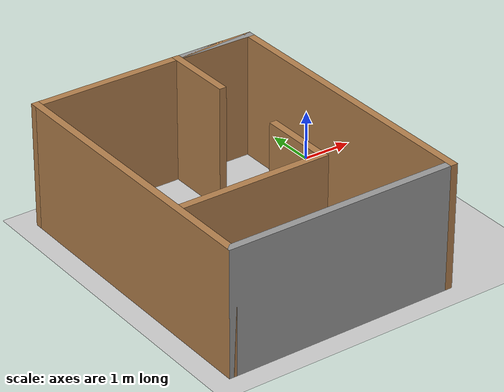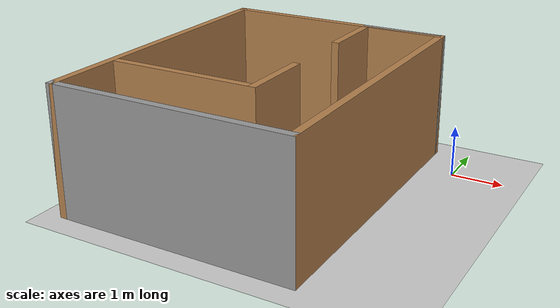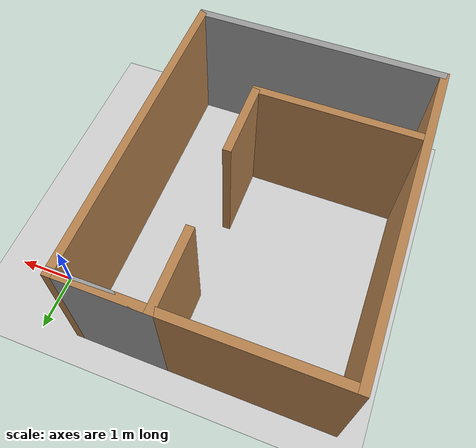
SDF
<sdf version="1.6">
 <world name="default">
  <light name="sun" type="directional">
   <pose>0 0 10 0 -0 0</pose>
   <diffuse>0.8 0.8 0.8 1</diffuse>
   <specular>0.2 0.2 0.2 1</specular>
   <attenuation>
    <range>1000</range>
    <constant>0.9</constant>
    <linear>0.01</linear>
    <quadratic>0.001</quadratic>
   </attenuation>
   <direction>-0.5 0.1 -0.9</direction>
  </light>
  <model name="ground_plane">
   <static>1</static>
   <link name="link">
    <collision name="collision">
     <geometry><plane><normal>0 0 1</normal><size>100 100</size></plane></geometry>
     <surface><friction><ode><mu>100</mu><mu2>50</mu2></ode></friction></surface>
    </collision>
    <visual name="visual">
     <cast_shadows>0</cast_shadows>
     <geometry><plane><normal>0 0 1</normal><size>100 100</size></plane></geometry>
     <material>
      <script><uri>file://media/materials/scripts/gazebo.material</uri><name>Gazebo/Grey</name></script>
     </material>
    </visual>
   </link>
  </model>
  <gravity>0 0 -9.8</gravity>
  <magnetic_field>6e-06 2.3e-05 -4.2e-05</magnetic_field>
  <atmosphere type="adiabatic"/>
  <physics name="default_physics" default="0" type="ode">
   <max_step_size>0.001</max_step_size>
   <real_time_factor>1</real_time_factor>
   <real_time_update_rate>1000</real_time_update_rate>
  </physics>
  <scene><ambient>0.4 0.4 0.4 1</ambient><background>0.7 0.7 0.7 1</background><shadows>1</shadows></scene>
  <audio><device>default</device></audio>
  <spherical_coordinates>
   <surface_model>EARTH_WGS84</surface_model>
   <latitude_deg>0</latitude_deg>
   <longitude_deg>0</longitude_deg>
   <elevation>0</elevation>
   <heading_deg>0</heading_deg>
  </spherical_coordinates>
  <model name="project-1.world">
   <pose>-3.02027 -2.07715 0 0 -0 0</pose>
   <link name="Wall_11">
    <collision name="Wall_11_Collision">
     <geometry><box><size>1.5 0.15 2.5</size></box></geometry>
     <pose>0 0 1.25 0 -0 0</pose>
    </collision>
    <visual name="Wall_11_Visual">
     <pose>0 0 1.25 0 -0 0</pose>
     <geometry><box><size>1.5 0.15 2.5</size></box></geometry>
     <material>
      <script><uri>file://media/materials/scripts/gazebo.material</uri><name>Gazebo/Wood</name></script>
      <ambient>1 1 1 1</ambient>
     </material>
     <meta><layer>0</layer></meta>
    </visual>
    <pose>0.7 2.25 0 0 -0 -1.5708</pose>
   </link>
   <link name="Wall_13">
    <collision name="Wall_13_Collision">
     <geometry><box><size>1.5 0.15 2.5</size></box></geometry>
     <pose>0 0 1.25 0 -0 0</pose>
    </collision>
    <visual name="Wall_13_Visual">
     <pose>0 0 1.25 0 -0 0</pose>
     <geometry><box><size>1.5 0.15 2.5</size></box></geometry>
     <material>
      <script><uri>file://media/materials/scripts/gazebo.material</uri><name>Gazebo/Wood</name></script>
      <ambient>1 1 1 1</ambient>
     </material>
     <meta><layer>0</layer></meta>
    </visual>
    <pose>0.7 -0.75 0 0 -0 1.5708</pose>
   </link>
   <link name="Wall_2">
    <collision name="Wall_2_Collision">
     <geometry><box><size>6 0.15 2.5</size></box></geometry>
     <pose>0 0 1.25 0 -0 0</pose>
    </collision>
    <visual name="Wall_2_Visual">
     <pose>0 0 1.25 0 -0 0</pose>
     <geometry><box><size>6 0.15 2.5</size></box></geometry>
     <material>
      <script><uri>file://media/materials/scripts/gazebo.material</uri><name>Gazebo/Wood</name></script>
      <ambient>1 1 1 1</ambient>
     </material>
     <meta><layer>0</layer></meta>
    </visual>
    <pose>-2.3 -0 0 0 -0 -1.5708</pose>
   </link>
   <link name="Wall_3">
    <collision name="Wall_3_Collision">
     <geometry><box><size>4.75 0.15 2.5</size></box></geometry>
     <pose>0 0 1.25 0 -0 0</pose>
    </collision>
    <visual name="Wall_3_Visual">
     <pose>0 0 1.25 0 -0 0</pose>
     <geometry><box><size>4.75 0.15 2.5</size></box></geometry>
     <material>
      <script><uri>file://media/materials/scripts/gazebo.material</uri><name>Gazebo/Grey</name></script>
      <ambient>1 1 1 1</ambient>
     </material>
     <meta><layer>0</layer></meta>
    </visual>
    <pose>-0 -2.925 0 0 -0 0</pose>
   </link>
   <link name="Wall_4">
    <collision name="Wall_4_Collision">
     <geometry><box><size>6 0.15 2.5</size></box></geometry>
     <pose>0 0 1.25 0 -0 0</pose>
    </collision>
    <visual name="Wall_4_Visual">
     <pose>0 0 1.25 0 -0 0</pose>
     <geometry><box><size>6 0.15 2.5</size></box></geometry>
     <material>
      <script><uri>file://media/materials/scripts/gazebo.material</uri><name>Gazebo/Wood</name></script>
      <ambient>1 1 1 1</ambient>
     </material>
     <meta><layer>0</layer></meta>
    </visual>
    <pose>2.3 -0 0 0 -0 1.5708</pose>
   </link>
   <link name="Wall_5">
    <collision name="Wall_5_Collision">
     <geometry><box><size>4.75 0.15 2.5</size></box></geometry>
     <pose>0 0 1.25 0 -0 0</pose>
    </collision>
    <visual name="Wall_5_Visual">
     <pose>0 0 1.25 0 -0 0</pose>
     <geometry><box><size>4.75 0.15 2.5</size></box></geometry>
     <material>
      <script><uri>file://media/materials/scripts/gazebo.material</uri><name>Gazebo/Wood</name></script>
      <ambient>1 1 1 1</ambient>
     </material>
     <meta><layer>0</layer></meta>
    </visual>
    <pose>-0 2.925 0 0 -0 3.14159</pose>
   </link>
   <link name="Wall_7">
    <collision name="Wall_7_Collision">
     <geometry><box><size>1.75 0.15 2.5</size></box></geometry>
     <pose>0 0 1.25 0 -0 0</pose>
    </collision>
    <visual name="Wall_7_Visual">
     <pose>0 0 1.25 0 -0 0</pose>
     <geometry><box><size>1.75 0.15 2.5</size></box></geometry>
     <material>
      <script><uri>file://media/materials/scripts/gazebo.material</uri><name>Gazebo/Grey</name></script>
      <ambient>1 1 1 1</ambient>
     </material>
     <meta><layer>0</layer></meta>
    </visual>
    <pose>1.5 2.925 0 0 -0 3.14159</pose>
   </link>
   <link name="Wall_9">
    <collision name="Wall_9_Collision">
     <geometry><box><size>3 0.15 2.5</size></box></geometry>
     <pose>0 0 1.25 0 -0 0</pose>
    </collision>
    <visual name="Wall_9_Visual">
     <pose>0 0 1.25 0 -0 0</pose>
     <geometry><box><size>3 0.15 2.5</size></box></geometry>
     <material>
      <script><uri>file://media/materials/scripts/gazebo.material</uri><name>Gazebo/Wood</name></script>
      <ambient>1 1 1 1</ambient>
     </material>
     <meta><layer>0</layer></meta>
    </visual>
    <pose>-0.725 -1.425 0 0 -0 3.14159</pose>
   </link>
   <static>1</static>
  </model>
 </world>
</sdf>
